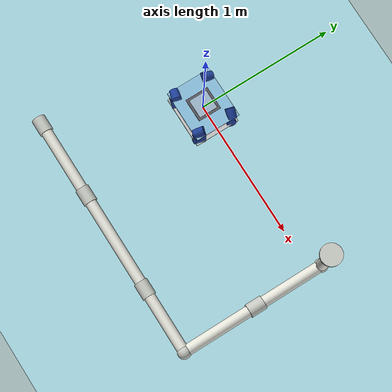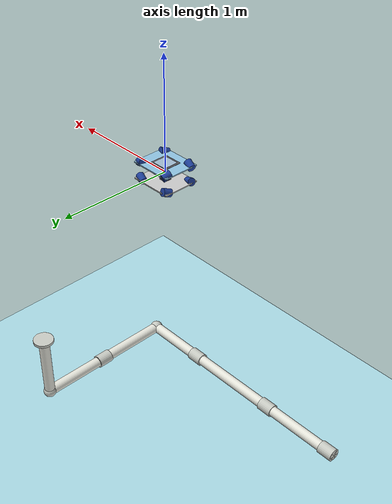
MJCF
<mujoco model="rov">
  <compiler angle="degree" autolimits="true"/>

  <option timestep="0.005" density="1000" viscosity="0.0009" integrator="implicitfast" gravity="0 0 0">
    <flag contact="enable"/>
  </option>

  <visual>
    <global offwidth="1280" offheight="720"/>
    <!-- bright ambient fill: a pool is lit by light scattering off the water and
         the white walls, not by one lamp, and the default ambient is nearly black -->
    <headlight ambient="0.30 0.33 0.35" diffuse="0.25 0.25 0.25" specular="0.08 0.08 0.08"/>
  </visual>

  <default>
    <geom solref="0.01 1" solimp="0.9 0.95 0.001"/>
    <default class="frame">
      <geom type="box" material="frame_mat"  />
    </default>
    <!-- thruster: a single short, stubby cylinder; axis is local +z (the thrust axis) -->
    <default class="thruster_body">
      <geom type="cylinder" size="0.03375 0.0375" material="thruster_mat"  />
    </default>
    <default class="thruster_site">
      <site type="cylinder" size="0.004 0.012" rgba="1 0.85 0.1 0.9" group="1"/>
    </default>
    <!-- 4" schedule-40 PVC: 0.055 m outer radius. Fittings are a size up. -->
    <default class="pvc_pipe">
      <geom type="cylinder" size="0.055" material="pvc_mat"/>
    </default>
    <default class="pvc_fitting">
      <geom type="cylinder" size="0.068" material="pvc_fitting_mat"/>
    </default>
  </default>

  <asset>
    <!-- pale aqua fading to near-white, as if looking up through pool water -->
    <texture type="skybox" builtin="gradient" rgb1="0.16 0.36 0.48" rgb2="0.38 0.62 0.70" width="256" height="256"/>
    <!-- glazed pool tile: two close blues so the grid reads without being loud -->
    <texture name="seabed_tex" type="2d" builtin="checker" rgb1="0.60 0.81 0.86" rgb2="0.71 0.88 0.91" width="300" height="300"/>
    <material name="seabed_mat" texture="seabed_tex" texrepeat="20 20" reflectance="0.25"/>

    <material name="frame_mat" rgba="0.55 0.75 0.87 1"/>
    <material name="baseplate_mat" rgba="0.78 0.78 0.78 1"/>
    <material name="thruster_mat" rgba="0.12 0.25 0.6 1"/>
    <material name="electronics_mat" rgba="0.35 0.35 0.38 1"/>
    <material name="hatch_mat" rgba="0.62 0.72 0.8 1"/>

    <!-- weathered white PVC, with slightly greyer fittings -->
    <material name="pvc_mat" rgba="0.90 0.90 0.86 1" specular="0.3" shininess="0.4"/>
    <material name="pvc_fitting_mat" rgba="0.78 0.79 0.76 1" specular="0.3" shininess="0.4"/>
  </asset>

  <worldbody>
    <!-- directional, not the default spotlight: a spot light's cos^10 cone (cutoff
         45, exponent 10) put a 14x hot spot on the floor directly below it -->
    <light directional="true" dir="-0.3 -0.4 -1" diffuse="0.55 0.55 0.55" specular="0.1 0.1 0.1"/>
    <geom name="seabed" type="plane" pos="0 0 -3" size="5 5 0.1" material="seabed_mat"/>

    <body name="pvc_pipe_run" pos="0 0 0">
      <geom name="pvc_run_x" class="pvc_pipe" fromto="-1.40 -0.90 -2.945  1.20 -0.90 -2.945"/>
      <geom name="pvc_run_y" class="pvc_pipe" fromto=" 1.20 -0.90 -2.945  1.20  0.60 -2.945"/>
      <geom name="pvc_riser" class="pvc_pipe" fromto=" 1.20  0.60 -2.945  1.20  0.60 -2.250"/>

      <!-- elbows: spheres at the two corners hide the seams -->
      <geom name="pvc_elbow_1" type="sphere" size="0.068" pos="1.20 -0.90 -2.945" material="pvc_fitting_mat"/>
      <geom name="pvc_elbow_2" type="sphere" size="0.068" pos="1.20  0.60 -2.945" material="pvc_fitting_mat"/>

      <!-- slip couplings part way along each run -->
      <geom name="pvc_coupling_1" class="pvc_fitting" fromto="-0.60 -0.90 -2.945  -0.44 -0.90 -2.945"/>
      <geom name="pvc_coupling_2" class="pvc_fitting" fromto=" 0.44 -0.90 -2.945   0.60 -0.90 -2.945"/>
      <geom name="pvc_coupling_3" class="pvc_fitting" fromto=" 1.20 -0.20 -2.945   1.20 -0.04 -2.945"/>

      <!-- capped open end, and a flange on top of the riser -->
      <geom name="pvc_end_cap" class="pvc_fitting" fromto="-1.40 -0.90 -2.945  -1.24 -0.90 -2.945"/>
      <geom name="pvc_flange" type="cylinder" size="0.105 0.015" pos="1.20 0.60 -2.235" material="pvc_fitting_mat"/>
    </body>

    <body name="base_link" pos="0 0 0">
      <freejoint name="root"/>
      <inertial pos="0 0 0" mass="6.9" diaginertia="0.083 0.138 0.193"/>

      <!-- ================= structure ================= -->
      <geom name="top_plate" class="frame" pos="0 0 0.075" size="0.190 0.165 0.005" material="frame_mat"/>
      <geom name="bottom_plate" class="frame" pos="0 0 -0.075" size="0.190 0.165 0.005" material="baseplate_mat"/>
      <!-- forward-looking camera on the front face of the frame -->
      <camera name="front" pos="0.19 0 0.02" xyaxes="0 -1 0  0 0 1" fovy="70"/>

      <!-- downward-looking (seabed) camera under the bottom plate -->
      <camera name="down" pos="0 0 -0.082" xyaxes="0 -1 0  1 0 0" fovy="60"/>

      <!-- recessed square hatch on the top plate -->
      <geom name="hatch_rim" class="frame" pos="0 0 0.081" size="0.085 0.085 0.002" material="electronics_mat"/>
      <geom name="hatch_lid" class="frame" pos="0 0 0.083" size="0.068 0.068 0.002" material="hatch_mat"/>

      <!-- electronics enclosure slung under the top plate, on a post to the base plate -->
      <geom name="enclosure" class="frame" pos="0 0 0.028" size="0.075 0.075 0.042" material="electronics_mat"/>
      <geom name="center_post" class="frame" pos="0 0 -0.032" size="0.032 0.032 0.038" material="electronics_mat"/>

      <!-- top plate, tilted up -->
      <geom name="thr_TFL" class="thruster_body" pos="0.150 0.125 0.075" zaxis="-0.9077 0.2432 0.342"/>
      <site name="site_TFL" class="thruster_site" pos="0.150 0.125 0.075" zaxis="-0.9077 0.2432 0.342"/>

      <geom name="thr_TFR" class="thruster_body" pos="0.150 -0.125 0.075" zaxis="0.2432 0.9077 0.342"/>
      <site name="site_TFR" class="thruster_site" pos="0.150 -0.125 0.075" zaxis="0.2432 0.9077 0.342"/>

      <geom name="thr_TBR" class="thruster_body" pos="-0.150 -0.125 0.075" zaxis="0.9077 -0.2432 0.342"/>
      <site name="site_TBR" class="thruster_site" pos="-0.150 -0.125 0.075" zaxis="0.9077 -0.2432 0.342"/>

      <geom name="thr_TBL" class="thruster_body" pos="-0.150 0.125 0.075" zaxis="-0.2432 -0.9077 0.342"/>
      <site name="site_TBL" class="thruster_site" pos="-0.150 0.125 0.075" zaxis="-0.2432 -0.9077 0.342"/>

      <!-- bottom plate, tilted down -->
      <geom name="thr_BFL" class="thruster_body" pos="0.150 0.125 -0.075" zaxis="-0.9077 0.2432 -0.342"/>
      <site name="site_BFL" class="thruster_site" pos="0.150 0.125 -0.075" zaxis="-0.9077 0.2432 -0.342"/>

      <geom name="thr_BFR" class="thruster_body" pos="0.150 -0.125 -0.075" zaxis="0.2432 0.9077 -0.342"/>
      <site name="site_BFR" class="thruster_site" pos="0.150 -0.125 -0.075" zaxis="0.2432 0.9077 -0.342"/>

      <geom name="thr_BBR" class="thruster_body" pos="-0.150 -0.125 -0.075" zaxis="0.9077 -0.2432 -0.342"/>
      <site name="site_BBR" class="thruster_site" pos="-0.150 -0.125 -0.075" zaxis="0.9077 -0.2432 -0.342"/>

      <geom name="thr_BBL" class="thruster_body" pos="-0.150 0.125 -0.075" zaxis="-0.2432 -0.9077 -0.342"/>
      <site name="site_BBL" class="thruster_site" pos="-0.150 0.125 -0.075" zaxis="-0.2432 -0.9077 -0.342"/>

      <camera name="tracking" mode="trackcom" pos="0.8 -0.8 0.5" xyaxes="0.7 0.7 0 -0.3 0.3 0.9"/>
    </body>
  </worldbody>

  <actuator>
    <!-- positive ctrl pushes the vehicle along that thruster's +z (cylinder) axis -->
    <motor name="thruster_TFL" site="site_TFL" gear="0 0 40 0 0 0" ctrlrange="-1 1"/>
    <motor name="thruster_TFR" site="site_TFR" gear="0 0 40 0 0 0" ctrlrange="-1 1"/>
    <motor name="thruster_TBR" site="site_TBR" gear="0 0 40 0 0 0" ctrlrange="-1 1"/>
    <motor name="thruster_TBL" site="site_TBL" gear="0 0 40 0 0 0" ctrlrange="-1 1"/>

    <motor name="thruster_BFL" site="site_BFL" gear="0 0 40 0 0 0" ctrlrange="-1 1"/>
    <motor name="thruster_BFR" site="site_BFR" gear="0 0 40 0 0 0" ctrlrange="-1 1"/>
    <motor name="thruster_BBR" site="site_BBR" gear="0 0 40 0 0 0" ctrlrange="-1 1"/>
    <motor name="thruster_BBL" site="site_BBL" gear="0 0 40 0 0 0" ctrlrange="-1 1"/>
  </actuator>
</mujoco>
